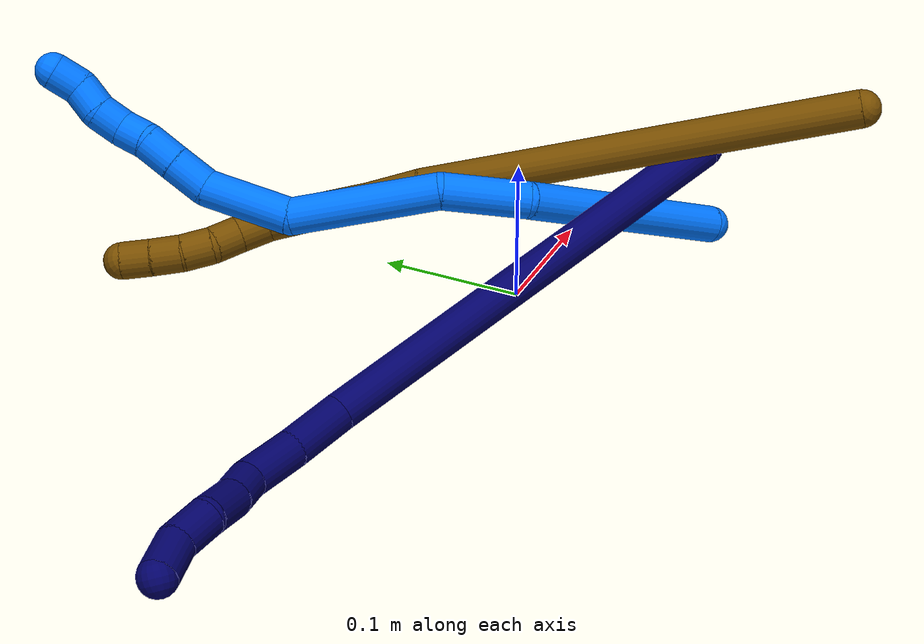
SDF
<sdf version="1.7">
 <world name="default">
  <model name="7">
   <static>0</static>
   <link name="7">
    <collision name="collision-cylinder-e_1_1_4">
     <pose>-0.134385 0.049802 -0.056192 -2.4164 -1.06127 1.99372</pose>
     <geometry><cylinder><radius>0.0125</radius><length>0.307877</length></cylinder></geometry>
     <surface>
      <friction><ode><mu>1.16</mu><mu2>1.16</mu2><slip1>0</slip1><slip2>0</slip2></ode></friction>
      <contact><ode><kp>1e+06</kp><kd>1</kd><max_vel>0</max_vel><min_depth>0.001</min_depth></ode></contact>
     </surface>
    </collision>
    <visual name="visual-cylinder-e_1_1_4">
     <pose>-0.134385 0.049802 -0.056192 -2.4164 -1.06127 1.99372</pose>
     <geometry><cylinder><radius>0.0125</radius><length>0.307877</length></cylinder></geometry>
     <material><ambient>0.003922 0 0.403922 1</ambient></material>
    </visual>
    <collision name="collision-cylinder-e_2_4_5">
     <pose>-0.2892 0.099336 -0.119894 3.10583 -1.21832 -3.09034</pose>
     <geometry><cylinder><radius>0.0125</radius><length>0.043538</length></cylinder></geometry>
     <surface>
      <friction><ode><mu>1.16</mu><mu2>1.16</mu2><slip1>0</slip1><slip2>0</slip2></ode></friction>
      <contact><ode><kp>1e+06</kp><kd>1</kd><max_vel>0</max_vel><min_depth>0.001</min_depth></ode></contact>
     </surface>
    </collision>
    <visual name="visual-cylinder-e_2_4_5">
     <pose>-0.2892 0.099336 -0.119894 3.10583 -1.21832 -3.09034</pose>
     <geometry><cylinder><radius>0.0125</radius><length>0.043538</length></cylinder></geometry>
     <material><ambient>0.003922 0 0.403922 1</ambient></material>
    </visual>
    <collision name="collision-cylinder-e_3_5_6">
     <pose>-0.328008 0.097606 -0.133037 2.88766 -1.26414 -2.79643</pose>
     <geometry><cylinder><radius>0.0125</radius><length>0.038551</length></cylinder></geometry>
     <surface>
      <friction><ode><mu>1.16</mu><mu2>1.16</mu2><slip1>0</slip1><slip2>0</slip2></ode></friction>
      <contact><ode><kp>1e+06</kp><kd>1</kd><max_vel>0</max_vel><min_depth>0.001</min_depth></ode></contact>
     </surface>
    </collision>
    <visual name="visual-cylinder-e_3_5_6">
     <pose>-0.328008 0.097606 -0.133037 2.88766 -1.26414 -2.79643</pose>
     <geometry><cylinder><radius>0.0125</radius><length>0.038551</length></cylinder></geometry>
     <material><ambient>0.003922 0 0.403922 1</ambient></material>
    </visual>
    <collision name="collision-cylinder-e_4_6_7">
     <pose>-0.356179 0.090968 -0.142704 2.23294 -0.980497 -1.65939</pose>
     <geometry><cylinder><radius>0.0125</radius><length>0.023581</length></cylinder></geometry>
     <surface>
      <friction><ode><mu>1.16</mu><mu2>1.16</mu2><slip1>0</slip1><slip2>0</slip2></ode></friction>
      <contact><ode><kp>1e+06</kp><kd>1</kd><max_vel>0</max_vel><min_depth>0.001</min_depth></ode></contact>
     </surface>
    </collision>
    <visual name="visual-cylinder-e_4_6_7">
     <pose>-0.356179 0.090968 -0.142704 2.23294 -0.980497 -1.65939</pose>
     <geometry><cylinder><radius>0.0125</radius><length>0.023581</length></cylinder></geometry>
     <material><ambient>0.003922 0 0.403922 1</ambient></material>
    </visual>
    <collision name="collision-cylinder-e_5_7_8">
     <pose>-0.379507 0.079087 -0.149905 2.01199 -1.06953 -1.5034</pose>
     <geometry><cylinder><radius>0.0125</radius><length>0.030863</length></cylinder></geometry>
     <surface>
      <friction><ode><mu>1.16</mu><mu2>1.16</mu2><slip1>0</slip1><slip2>0</slip2></ode></friction>
      <contact><ode><kp>1e+06</kp><kd>1</kd><max_vel>0</max_vel><min_depth>0.001</min_depth></ode></contact>
     </surface>
    </collision>
    <visual name="visual-cylinder-e_5_7_8">
     <pose>-0.379507 0.079087 -0.149905 2.01199 -1.06953 -1.5034</pose>
     <geometry><cylinder><radius>0.0125</radius><length>0.030863</length></cylinder></geometry>
     <material><ambient>0.003922 0 0.403922 1</ambient></material>
    </visual>
    <collision name="collision-cylinder-e_6_8_9">
     <pose>-0.405486 0.070823 -0.157883 2.8283 -1.18485 -2.68062</pose>
     <geometry><cylinder><radius>0.0125</radius><length>0.026868</length></cylinder></geometry>
     <surface>
      <friction><ode><mu>1.16</mu><mu2>1.16</mu2><slip1>0</slip1><slip2>0</slip2></ode></friction>
      <contact><ode><kp>1e+06</kp><kd>1</kd><max_vel>0</max_vel><min_depth>0.001</min_depth></ode></contact>
     </surface>
    </collision>
    <visual name="visual-cylinder-e_6_8_9">
     <pose>-0.405486 0.070823 -0.157883 2.8283 -1.18485 -2.68062</pose>
     <geometry><cylinder><radius>0.0125</radius><length>0.026868</length></cylinder></geometry>
     <material><ambient>0.003922 0 0.403922 1</ambient></material>
    </visual>
    <collision name="collision-cylinder-e_7_9_2">
     <pose>-0.428918 0.063949 -0.170261 2.52922 -0.871088 -1.94814</pose>
     <geometry><cylinder><radius>0.0125</radius><length>0.028722</length></cylinder></geometry>
     <surface>
      <friction><ode><mu>1.16</mu><mu2>1.16</mu2><slip1>0</slip1><slip2>0</slip2></ode></friction>
      <contact><ode><kp>1e+06</kp><kd>1</kd><max_vel>0</max_vel><min_depth>0.001</min_depth></ode></contact>
     </surface>
    </collision>
    <visual name="visual-cylinder-e_7_9_2">
     <pose>-0.428918 0.063949 -0.170261 2.52922 -0.871088 -1.94814</pose>
     <geometry><cylinder><radius>0.0125</radius><length>0.028722</length></cylinder></geometry>
     <material><ambient>0.003922 0 0.403922 1</ambient></material>
    </visual>
    <collision name="collision-sphere-2">
     <pose>-0.439905 0.058633 -0.177829 0 -0 0</pose>
     <geometry><sphere><radius>0.0125</radius></sphere></geometry>
     <surface>
      <friction><ode><mu>1.16</mu><mu2>1.16</mu2><slip1>0</slip1><slip2>0</slip2></ode></friction>
      <contact><ode><kp>1e+06</kp><kd>1</kd><max_vel>0</max_vel><min_depth>0.001</min_depth></ode></contact>
     </surface>
    </collision>
    <visual name="visual-sphere-2">
     <pose>-0.439905 0.058633 -0.177829 0 -0 0</pose>
     <geometry><sphere><radius>0.0125</radius></sphere></geometry>
     <material><ambient>0.003922 0 0.403922 1</ambient></material>
    </visual>
    <collision name="collision-sphere-9">
     <pose>-0.417932 0.069265 -0.162694 0 -0 0</pose>
     <geometry><sphere><radius>0.0125</radius></sphere></geometry>
     <surface>
      <friction><ode><mu>1.16</mu><mu2>1.16</mu2><slip1>0</slip1><slip2>0</slip2></ode></friction>
      <contact><ode><kp>1e+06</kp><kd>1</kd><max_vel>0</max_vel><min_depth>0.001</min_depth></ode></contact>
     </surface>
    </collision>
    <visual name="visual-sphere-9">
     <pose>-0.417932 0.069265 -0.162694 0 -0 0</pose>
     <geometry><sphere><radius>0.0125</radius></sphere></geometry>
     <material><ambient>0.003922 0 0.403922 1</ambient></material>
    </visual>
    <collision name="collision-sphere-4">
     <pose>-0.268769 0.099605 -0.112384 0 -0 0</pose>
     <geometry><sphere><radius>0.0125</radius></sphere></geometry>
     <surface>
      <friction><ode><mu>1.16</mu><mu2>1.16</mu2><slip1>0</slip1><slip2>0</slip2></ode></friction>
      <contact><ode><kp>1e+06</kp><kd>1</kd><max_vel>0</max_vel><min_depth>0.001</min_depth></ode></contact>
     </surface>
    </collision>
    <visual name="visual-sphere-4">
     <pose>-0.268769 0.099605 -0.112384 0 -0 0</pose>
     <geometry><sphere><radius>0.0125</radius></sphere></geometry>
     <material><ambient>0.003922 0 0.403922 1</ambient></material>
    </visual>
    <collision name="collision-sphere-1">
     <geometry><sphere><radius>0.0125</radius></sphere></geometry>
     <surface>
      <friction><ode><mu>1.16</mu><mu2>1.16</mu2><slip1>0</slip1><slip2>0</slip2></ode></friction>
      <contact><ode><kp>1e+06</kp><kd>1</kd><max_vel>0</max_vel><min_depth>0.001</min_depth></ode></contact>
     </surface>
    </collision>
    <visual name="visual-sphere-1">
     <geometry><sphere><radius>0.0125</radius></sphere></geometry>
     <material><ambient>0.003922 0 0.403922 1</ambient></material>
    </visual>
    <collision name="collision-sphere-8">
     <pose>-0.39304 0.072382 -0.153072 0 -0 0</pose>
     <geometry><sphere><radius>0.0125</radius></sphere></geometry>
     <surface>
      <friction><ode><mu>1.16</mu><mu2>1.16</mu2><slip1>0</slip1><slip2>0</slip2></ode></friction>
      <contact><ode><kp>1e+06</kp><kd>1</kd><max_vel>0</max_vel><min_depth>0.001</min_depth></ode></contact>
     </surface>
    </collision>
    <visual name="visual-sphere-8">
     <pose>-0.39304 0.072382 -0.153072 0 -0 0</pose>
     <geometry><sphere><radius>0.0125</radius></sphere></geometry>
     <material><ambient>0.003922 0 0.403922 1</ambient></material>
    </visual>
    <collision name="collision-sphere-5">
     <pose>-0.309631 0.099068 -0.127405 0 -0 0</pose>
     <geometry><sphere><radius>0.0125</radius></sphere></geometry>
     <surface>
      <friction><ode><mu>1.16</mu><mu2>1.16</mu2><slip1>0</slip1><slip2>0</slip2></ode></friction>
      <contact><ode><kp>1e+06</kp><kd>1</kd><max_vel>0</max_vel><min_depth>0.001</min_depth></ode></contact>
     </surface>
    </collision>
    <visual name="visual-sphere-5">
     <pose>-0.309631 0.099068 -0.127405 0 -0 0</pose>
     <geometry><sphere><radius>0.0125</radius></sphere></geometry>
     <material><ambient>0.003922 0 0.403922 1</ambient></material>
    </visual>
    <collision name="collision-sphere-6">
     <pose>-0.346384 0.096144 -0.138669 0 -0 0</pose>
     <geometry><sphere><radius>0.0125</radius></sphere></geometry>
     <surface>
      <friction><ode><mu>1.16</mu><mu2>1.16</mu2><slip1>0</slip1><slip2>0</slip2></ode></friction>
      <contact><ode><kp>1e+06</kp><kd>1</kd><max_vel>0</max_vel><min_depth>0.001</min_depth></ode></contact>
     </surface>
    </collision>
    <visual name="visual-sphere-6">
     <pose>-0.346384 0.096144 -0.138669 0 -0 0</pose>
     <geometry><sphere><radius>0.0125</radius></sphere></geometry>
     <material><ambient>0.003922 0 0.403922 1</ambient></material>
    </visual>
    <collision name="collision-sphere-7">
     <pose>-0.365974 0.085792 -0.146739 0 -0 0</pose>
     <geometry><sphere><radius>0.0125</radius></sphere></geometry>
     <surface>
      <friction><ode><mu>1.16</mu><mu2>1.16</mu2><slip1>0</slip1><slip2>0</slip2></ode></friction>
      <contact><ode><kp>1e+06</kp><kd>1</kd><max_vel>0</max_vel><min_depth>0.001</min_depth></ode></contact>
     </surface>
    </collision>
    <visual name="visual-sphere-7">
     <pose>-0.365974 0.085792 -0.146739 0 -0 0</pose>
     <geometry><sphere><radius>0.0125</radius></sphere></geometry>
     <material><ambient>0.003922 0 0.403922 1</ambient></material>
    </visual>
    <inertial>
     <pose>-0.219872 0.063493 -0.089545 0 -0 0</pose>
     <mass>0.5</mass>
     <inertia>
      <ixx>0.000551</ixx>
      <ixy>0</ixy>
      <ixz>0</ixz>
      <iyy>0.003151</iyy>
      <iyz>0</iyz>
      <izz>0.001357</izz>
     </inertia>
    </inertial>
   </link>
   <pose>0.053514 -0.111439 0.113519 -0.625214 0.186166 -0.461369</pose>
  </model>
  <model name="12">
   <static>0</static>
   <link name="12">
    <collision name="collision-cylinder-e_1_1_4">
     <pose>-0.069484 0.073327 -0.104847 -2.53129 -0.497515 1.3573</pose>
     <geometry><cylinder><radius>0.0125</radius><length>0.29119</length></cylinder></geometry>
     <surface>
      <friction><ode><mu>1.16</mu><mu2>1.16</mu2><slip1>0</slip1><slip2>0</slip2></ode></friction>
      <contact><ode><kp>1e+06</kp><kd>1</kd><max_vel>0</max_vel><min_depth>0.001</min_depth></ode></contact>
     </surface>
    </collision>
    <visual name="visual-cylinder-e_1_1_4">
     <pose>-0.069484 0.073327 -0.104847 -2.53129 -0.497515 1.3573</pose>
     <geometry><cylinder><radius>0.0125</radius><length>0.29119</length></cylinder></geometry>
     <material><ambient>0.466667 0.301961 0 1</ambient></material>
    </visual>
    <collision name="collision-cylinder-e_2_4_5">
     <pose>-0.14823 0.154593 -0.224199 -2.64082 -0.510586 1.59106</pose>
     <geometry><cylinder><radius>0.0125</radius><length>0.037904</length></cylinder></geometry>
     <surface>
      <friction><ode><mu>1.16</mu><mu2>1.16</mu2><slip1>0</slip1><slip2>0</slip2></ode></friction>
      <contact><ode><kp>1e+06</kp><kd>1</kd><max_vel>0</max_vel><min_depth>0.001</min_depth></ode></contact>
     </surface>
    </collision>
    <visual name="visual-cylinder-e_2_4_5">
     <pose>-0.14823 0.154593 -0.224199 -2.64082 -0.510586 1.59106</pose>
     <geometry><cylinder><radius>0.0125</radius><length>0.037904</length></cylinder></geometry>
     <material><ambient>0.466667 0.301961 0 1</ambient></material>
    </visual>
    <collision name="collision-cylinder-e_3_5_6">
     <pose>-0.164648 0.168549 -0.24422 -2.31275 -0.719729 1.41513</pose>
     <geometry><cylinder><radius>0.0125</radius><length>0.021713</length></cylinder></geometry>
     <surface>
      <friction><ode><mu>1.16</mu><mu2>1.16</mu2><slip1>0</slip1><slip2>0</slip2></ode></friction>
      <contact><ode><kp>1e+06</kp><kd>1</kd><max_vel>0</max_vel><min_depth>0.001</min_depth></ode></contact>
     </surface>
    </collision>
    <visual name="visual-cylinder-e_3_5_6">
     <pose>-0.164648 0.168549 -0.24422 -2.31275 -0.719729 1.41513</pose>
     <geometry><cylinder><radius>0.0125</radius><length>0.021713</length></cylinder></geometry>
     <material><ambient>0.466667 0.301961 0 1</ambient></material>
    </visual>
    <collision name="collision-cylinder-e_4_6_7">
     <pose>-0.179869 0.181377 -0.256354 -2.3419 -0.704052 1.43105</pose>
     <geometry><cylinder><radius>0.0125</radius><length>0.024916</length></cylinder></geometry>
     <surface>
      <friction><ode><mu>1.16</mu><mu2>1.16</mu2><slip1>0</slip1><slip2>0</slip2></ode></friction>
      <contact><ode><kp>1e+06</kp><kd>1</kd><max_vel>0</max_vel><min_depth>0.001</min_depth></ode></contact>
     </surface>
    </collision>
    <visual name="visual-cylinder-e_4_6_7">
     <pose>-0.179869 0.181377 -0.256354 -2.3419 -0.704052 1.43105</pose>
     <geometry><cylinder><radius>0.0125</radius><length>0.024916</length></cylinder></geometry>
     <material><ambient>0.466667 0.301961 0 1</ambient></material>
    </visual>
    <collision name="collision-cylinder-e_5_7_8">
     <pose>-0.194732 0.193827 -0.269498 -2.42888 -0.667582 1.49994</pose>
     <geometry><cylinder><radius>0.0125</radius><length>0.021966</length></cylinder></geometry>
     <surface>
      <friction><ode><mu>1.16</mu><mu2>1.16</mu2><slip1>0</slip1><slip2>0</slip2></ode></friction>
      <contact><ode><kp>1e+06</kp><kd>1</kd><max_vel>0</max_vel><min_depth>0.001</min_depth></ode></contact>
     </surface>
    </collision>
    <visual name="visual-cylinder-e_5_7_8">
     <pose>-0.194732 0.193827 -0.269498 -2.42888 -0.667582 1.49994</pose>
     <geometry><cylinder><radius>0.0125</radius><length>0.021966</length></cylinder></geometry>
     <material><ambient>0.466667 0.301961 0 1</ambient></material>
    </visual>
    <collision name="collision-cylinder-e_6_8_9">
     <pose>-0.2094 0.203871 -0.281767 -2.48744 -0.827141 1.82546</pose>
     <geometry><cylinder><radius>0.0125</radius><length>0.02138</length></cylinder></geometry>
     <surface>
      <friction><ode><mu>1.16</mu><mu2>1.16</mu2><slip1>0</slip1><slip2>0</slip2></ode></friction>
      <contact><ode><kp>1e+06</kp><kd>1</kd><max_vel>0</max_vel><min_depth>0.001</min_depth></ode></contact>
     </surface>
    </collision>
    <visual name="visual-cylinder-e_6_8_9">
     <pose>-0.2094 0.203871 -0.281767 -2.48744 -0.827141 1.82546</pose>
     <geometry><cylinder><radius>0.0125</radius><length>0.02138</length></cylinder></geometry>
     <material><ambient>0.466667 0.301961 0 1</ambient></material>
    </visual>
    <collision name="collision-cylinder-e_7_9_10">
     <pose>-0.226138 0.2127 -0.289599 -2.01182 -1.06663 1.49992</pose>
     <geometry><cylinder><radius>0.0125</radius><length>0.020264</length></cylinder></geometry>
     <surface>
      <friction><ode><mu>1.16</mu><mu2>1.16</mu2><slip1>0</slip1><slip2>0</slip2></ode></friction>
      <contact><ode><kp>1e+06</kp><kd>1</kd><max_vel>0</max_vel><min_depth>0.001</min_depth></ode></contact>
     </surface>
    </collision>
    <visual name="visual-cylinder-e_7_9_10">
     <pose>-0.226138 0.2127 -0.289599 -2.01182 -1.06663 1.49992</pose>
     <geometry><cylinder><radius>0.0125</radius><length>0.020264</length></cylinder></geometry>
     <material><ambient>0.466667 0.301961 0 1</ambient></material>
    </visual>
    <collision name="collision-cylinder-e_8_10_11">
     <pose>-0.242159 0.222443 -0.296452 -2.30144 -0.786095 1.49643</pose>
     <geometry><cylinder><radius>0.0125</radius><length>0.020206</length></cylinder></geometry>
     <surface>
      <friction><ode><mu>1.16</mu><mu2>1.16</mu2><slip1>0</slip1><slip2>0</slip2></ode></friction>
      <contact><ode><kp>1e+06</kp><kd>1</kd><max_vel>0</max_vel><min_depth>0.001</min_depth></ode></contact>
     </surface>
    </collision>
    <visual name="visual-cylinder-e_8_10_11">
     <pose>-0.242159 0.222443 -0.296452 -2.30144 -0.786095 1.49643</pose>
     <geometry><cylinder><radius>0.0125</radius><length>0.020206</length></cylinder></geometry>
     <material><ambient>0.466667 0.301961 0 1</ambient></material>
    </visual>
    <collision name="collision-cylinder-e_9_11_12">
     <pose>-0.255195 0.233769 -0.306936 -2.33156 -0.617177 1.27872</pose>
     <geometry><cylinder><radius>0.0125</radius><length>0.020345</length></cylinder></geometry>
     <surface>
      <friction><ode><mu>1.16</mu><mu2>1.16</mu2><slip1>0</slip1><slip2>0</slip2></ode></friction>
      <contact><ode><kp>1e+06</kp><kd>1</kd><max_vel>0</max_vel><min_depth>0.001</min_depth></ode></contact>
     </surface>
    </collision>
    <visual name="visual-cylinder-e_9_11_12">
     <pose>-0.255195 0.233769 -0.306936 -2.33156 -0.617177 1.27872</pose>
     <geometry><cylinder><radius>0.0125</radius><length>0.020345</length></cylinder></geometry>
     <material><ambient>0.466667 0.301961 0 1</ambient></material>
    </visual>
    <collision name="collision-cylinder-e_10_12_2">
     <pose>-0.266396 0.245766 -0.318745 -2.36453 -0.556558 1.21868</pose>
     <geometry><cylinder><radius>0.0125</radius><length>0.020116</length></cylinder></geometry>
     <surface>
      <friction><ode><mu>1.16</mu><mu2>1.16</mu2><slip1>0</slip1><slip2>0</slip2></ode></friction>
      <contact><ode><kp>1e+06</kp><kd>1</kd><max_vel>0</max_vel><min_depth>0.001</min_depth></ode></contact>
     </surface>
    </collision>
    <visual name="visual-cylinder-e_10_12_2">
     <pose>-0.266396 0.245766 -0.318745 -2.36453 -0.556558 1.21868</pose>
     <geometry><cylinder><radius>0.0125</radius><length>0.020116</length></cylinder></geometry>
     <material><ambient>0.466667 0.301961 0 1</ambient></material>
    </visual>
    <collision name="collision-sphere-2">
     <pose>-0.271709 0.251754 -0.324834 0 -0 0</pose>
     <geometry><sphere><radius>0.0125</radius></sphere></geometry>
     <surface>
      <friction><ode><mu>1.16</mu><mu2>1.16</mu2><slip1>0</slip1><slip2>0</slip2></ode></friction>
      <contact><ode><kp>1e+06</kp><kd>1</kd><max_vel>0</max_vel><min_depth>0.001</min_depth></ode></contact>
     </surface>
    </collision>
    <visual name="visual-sphere-2">
     <pose>-0.271709 0.251754 -0.324834 0 -0 0</pose>
     <geometry><sphere><radius>0.0125</radius></sphere></geometry>
     <material><ambient>0.466667 0.301961 0 1</ambient></material>
    </visual>
    <collision name="collision-sphere-12">
     <pose>-0.261082 0.239778 -0.312656 0 -0 0</pose>
     <geometry><sphere><radius>0.0125</radius></sphere></geometry>
     <surface>
      <friction><ode><mu>1.16</mu><mu2>1.16</mu2><slip1>0</slip1><slip2>0</slip2></ode></friction>
      <contact><ode><kp>1e+06</kp><kd>1</kd><max_vel>0</max_vel><min_depth>0.001</min_depth></ode></contact>
     </surface>
    </collision>
    <visual name="visual-sphere-12">
     <pose>-0.261082 0.239778 -0.312656 0 -0 0</pose>
     <geometry><sphere><radius>0.0125</radius></sphere></geometry>
     <material><ambient>0.466667 0.301961 0 1</ambient></material>
    </visual>
    <collision name="collision-sphere-11">
     <pose>-0.249308 0.22776 -0.301217 0 -0 0</pose>
     <geometry><sphere><radius>0.0125</radius></sphere></geometry>
     <surface>
      <friction><ode><mu>1.16</mu><mu2>1.16</mu2><slip1>0</slip1><slip2>0</slip2></ode></friction>
      <contact><ode><kp>1e+06</kp><kd>1</kd><max_vel>0</max_vel><min_depth>0.001</min_depth></ode></contact>
     </surface>
    </collision>
    <visual name="visual-sphere-11">
     <pose>-0.249308 0.22776 -0.301217 0 -0 0</pose>
     <geometry><sphere><radius>0.0125</radius></sphere></geometry>
     <material><ambient>0.466667 0.301961 0 1</ambient></material>
    </visual>
    <collision name="collision-sphere-10">
     <pose>-0.23501 0.217126 -0.291688 0 -0 0</pose>
     <geometry><sphere><radius>0.0125</radius></sphere></geometry>
     <surface>
      <friction><ode><mu>1.16</mu><mu2>1.16</mu2><slip1>0</slip1><slip2>0</slip2></ode></friction>
      <contact><ode><kp>1e+06</kp><kd>1</kd><max_vel>0</max_vel><min_depth>0.001</min_depth></ode></contact>
     </surface>
    </collision>
    <visual name="visual-sphere-10">
     <pose>-0.23501 0.217126 -0.291688 0 -0 0</pose>
     <geometry><sphere><radius>0.0125</radius></sphere></geometry>
     <material><ambient>0.466667 0.301961 0 1</ambient></material>
    </visual>
    <collision name="collision-sphere-9">
     <pose>-0.217267 0.208274 -0.28751 0 -0 0</pose>
     <geometry><sphere><radius>0.0125</radius></sphere></geometry>
     <surface>
      <friction><ode><mu>1.16</mu><mu2>1.16</mu2><slip1>0</slip1><slip2>0</slip2></ode></friction>
      <contact><ode><kp>1e+06</kp><kd>1</kd><max_vel>0</max_vel><min_depth>0.001</min_depth></ode></contact>
     </surface>
    </collision>
    <visual name="visual-sphere-9">
     <pose>-0.217267 0.208274 -0.28751 0 -0 0</pose>
     <geometry><sphere><radius>0.0125</radius></sphere></geometry>
     <material><ambient>0.466667 0.301961 0 1</ambient></material>
    </visual>
    <collision name="collision-sphere-4">
     <pose>-0.138969 0.146655 -0.209694 0 -0 0</pose>
     <geometry><sphere><radius>0.0125</radius></sphere></geometry>
     <surface>
      <friction><ode><mu>1.16</mu><mu2>1.16</mu2><slip1>0</slip1><slip2>0</slip2></ode></friction>
      <contact><ode><kp>1e+06</kp><kd>1</kd><max_vel>0</max_vel><min_depth>0.001</min_depth></ode></contact>
     </surface>
    </collision>
    <visual name="visual-sphere-4">
     <pose>-0.138969 0.146655 -0.209694 0 -0 0</pose>
     <geometry><sphere><radius>0.0125</radius></sphere></geometry>
     <material><ambient>0.466667 0.301961 0 1</ambient></material>
    </visual>
    <collision name="collision-sphere-1">
     <geometry><sphere><radius>0.0125</radius></sphere></geometry>
     <surface>
      <friction><ode><mu>1.16</mu><mu2>1.16</mu2><slip1>0</slip1><slip2>0</slip2></ode></friction>
      <contact><ode><kp>1e+06</kp><kd>1</kd><max_vel>0</max_vel><min_depth>0.001</min_depth></ode></contact>
     </surface>
    </collision>
    <visual name="visual-sphere-1">
     <geometry><sphere><radius>0.0125</radius></sphere></geometry>
     <material><ambient>0.466667 0.301961 0 1</ambient></material>
    </visual>
    <collision name="collision-sphere-8">
     <pose>-0.201532 0.199467 -0.276024 0 -0 0</pose>
     <geometry><sphere><radius>0.0125</radius></sphere></geometry>
     <surface>
      <friction><ode><mu>1.16</mu><mu2>1.16</mu2><slip1>0</slip1><slip2>0</slip2></ode></friction>
      <contact><ode><kp>1e+06</kp><kd>1</kd><max_vel>0</max_vel><min_depth>0.001</min_depth></ode></contact>
     </surface>
    </collision>
    <visual name="visual-sphere-8">
     <pose>-0.201532 0.199467 -0.276024 0 -0 0</pose>
     <geometry><sphere><radius>0.0125</radius></sphere></geometry>
     <material><ambient>0.466667 0.301961 0 1</ambient></material>
    </visual>
    <collision name="collision-sphere-5">
     <pose>-0.157492 0.162531 -0.238703 0 -0 0</pose>
     <geometry><sphere><radius>0.0125</radius></sphere></geometry>
     <surface>
      <friction><ode><mu>1.16</mu><mu2>1.16</mu2><slip1>0</slip1><slip2>0</slip2></ode></friction>
      <contact><ode><kp>1e+06</kp><kd>1</kd><max_vel>0</max_vel><min_depth>0.001</min_depth></ode></contact>
     </surface>
    </collision>
    <visual name="visual-sphere-5">
     <pose>-0.157492 0.162531 -0.238703 0 -0 0</pose>
     <geometry><sphere><radius>0.0125</radius></sphere></geometry>
     <material><ambient>0.466667 0.301961 0 1</ambient></material>
    </visual>
    <collision name="collision-sphere-6">
     <pose>-0.171804 0.174567 -0.249736 0 -0 0</pose>
     <geometry><sphere><radius>0.0125</radius></sphere></geometry>
     <surface>
      <friction><ode><mu>1.16</mu><mu2>1.16</mu2><slip1>0</slip1><slip2>0</slip2></ode></friction>
      <contact><ode><kp>1e+06</kp><kd>1</kd><max_vel>0</max_vel><min_depth>0.001</min_depth></ode></contact>
     </surface>
    </collision>
    <visual name="visual-sphere-6">
     <pose>-0.171804 0.174567 -0.249736 0 -0 0</pose>
     <geometry><sphere><radius>0.0125</radius></sphere></geometry>
     <material><ambient>0.466667 0.301961 0 1</ambient></material>
    </visual>
    <collision name="collision-sphere-7">
     <pose>-0.187933 0.188187 -0.262972 0 -0 0</pose>
     <geometry><sphere><radius>0.0125</radius></sphere></geometry>
     <surface>
      <friction><ode><mu>1.16</mu><mu2>1.16</mu2><slip1>0</slip1><slip2>0</slip2></ode></friction>
      <contact><ode><kp>1e+06</kp><kd>1</kd><max_vel>0</max_vel><min_depth>0.001</min_depth></ode></contact>
     </surface>
    </collision>
    <visual name="visual-sphere-7">
     <pose>-0.187933 0.188187 -0.262972 0 -0 0</pose>
     <geometry><sphere><radius>0.0125</radius></sphere></geometry>
     <material><ambient>0.466667 0.301961 0 1</ambient></material>
    </visual>
    <inertial>
     <pose>-0.125378 0.125024 -0.174355 0 -0 0</pose>
     <mass>0.5</mass>
     <inertia>
      <ixx>0.002157</ixx>
      <ixy>0</ixy>
      <ixz>0</ixz>
      <iyy>0.002012</iyy>
      <iyz>0</iyz>
      <izz>-7.8e-05</izz>
     </inertia>
    </inertial>
   </link>
   <pose>0.055857 -0.213521 0.163517 0.864191 -0.343785 -0.093496</pose>
  </model>
  <model name="14">
   <static>0</static>
   <link name="14">
    <collision name="collision-cylinder-e_1_1_4">
     <pose>-0.035357 0.017579 0.06399 -0.268099 -0.489548 0.067345</pose>
     <geometry><cylinder><radius>0.0125</radius><length>0.150384</length></cylinder></geometry>
     <surface>
      <friction><ode><mu>1.16</mu><mu2>1.16</mu2><slip1>0</slip1><slip2>0</slip2></ode></friction>
      <contact><ode><kp>1e+06</kp><kd>1</kd><max_vel>0</max_vel><min_depth>0.001</min_depth></ode></contact>
     </surface>
    </collision>
    <visual name="visual-cylinder-e_1_1_4">
     <pose>-0.035357 0.017579 0.06399 -0.268099 -0.489548 0.067345</pose>
     <geometry><cylinder><radius>0.0125</radius><length>0.150384</length></cylinder></geometry>
     <material><ambient>0 0.462745 1 1</ambient></material>
    </visual>
    <collision name="collision-cylinder-e_2_4_5">
     <pose>-0.073775 0.045371 0.155248 -0.358372 -0.104703 0.018982</pose>
     <geometry><cylinder><radius>0.0125</radius><length>0.058559</length></cylinder></geometry>
     <surface>
      <friction><ode><mu>1.16</mu><mu2>1.16</mu2><slip1>0</slip1><slip2>0</slip2></ode></friction>
      <contact><ode><kp>1e+06</kp><kd>1</kd><max_vel>0</max_vel><min_depth>0.001</min_depth></ode></contact>
     </surface>
    </collision>
    <visual name="visual-cylinder-e_2_4_5">
     <pose>-0.073775 0.045371 0.155248 -0.358372 -0.104703 0.018982</pose>
     <geometry><cylinder><radius>0.0125</radius><length>0.058559</length></cylinder></geometry>
     <material><ambient>0 0.462745 1 1</ambient></material>
    </visual>
    <collision name="collision-cylinder-e_3_5_6">
     <pose>-0.071399 0.086498 0.221678 -0.668253 0.108523 -0.037706</pose>
     <geometry><cylinder><radius>0.0125</radius><length>0.100374</length></cylinder></geometry>
     <surface>
      <friction><ode><mu>1.16</mu><mu2>1.16</mu2><slip1>0</slip1><slip2>0</slip2></ode></friction>
      <contact><ode><kp>1e+06</kp><kd>1</kd><max_vel>0</max_vel><min_depth>0.001</min_depth></ode></contact>
     </surface>
    </collision>
    <visual name="visual-cylinder-e_3_5_6">
     <pose>-0.071399 0.086498 0.221678 -0.668253 0.108523 -0.037706</pose>
     <geometry><cylinder><radius>0.0125</radius><length>0.100374</length></cylinder></geometry>
     <material><ambient>0 0.462745 1 1</ambient></material>
    </visual>
    <collision name="collision-cylinder-e_4_6_7">
     <pose>-0.058191 0.122942 0.289441 -0.190978 0.260702 -0.025111</pose>
     <geometry><cylinder><radius>0.0125</radius><length>0.060302</length></cylinder></geometry>
     <surface>
      <friction><ode><mu>1.16</mu><mu2>1.16</mu2><slip1>0</slip1><slip2>0</slip2></ode></friction>
      <contact><ode><kp>1e+06</kp><kd>1</kd><max_vel>0</max_vel><min_depth>0.001</min_depth></ode></contact>
     </surface>
    </collision>
    <visual name="visual-cylinder-e_4_6_7">
     <pose>-0.058191 0.122942 0.289441 -0.190978 0.260702 -0.025111</pose>
     <geometry><cylinder><radius>0.0125</radius><length>0.060302</length></cylinder></geometry>
     <material><ambient>0 0.462745 1 1</ambient></material>
    </visual>
    <collision name="collision-cylinder-e_5_7_8">
     <pose>-0.048439 0.126278 0.330901 0.168971 0.150728 0.012789</pose>
     <geometry><cylinder><radius>0.0125</radius><length>0.026386</length></cylinder></geometry>
     <surface>
      <friction><ode><mu>1.16</mu><mu2>1.16</mu2><slip1>0</slip1><slip2>0</slip2></ode></friction>
      <contact><ode><kp>1e+06</kp><kd>1</kd><max_vel>0</max_vel><min_depth>0.001</min_depth></ode></contact>
     </surface>
    </collision>
    <visual name="visual-cylinder-e_5_7_8">
     <pose>-0.048439 0.126278 0.330901 0.168971 0.150728 0.012789</pose>
     <geometry><cylinder><radius>0.0125</radius><length>0.026386</length></cylinder></geometry>
     <material><ambient>0 0.462745 1 1</ambient></material>
    </visual>
    <collision name="collision-cylinder-e_6_8_9">
     <pose>-0.044177 0.122107 0.355208 0.171077 0.193796 0.016669</pose>
     <geometry><cylinder><radius>0.0125</radius><length>0.023683</length></cylinder></geometry>
     <surface>
      <friction><ode><mu>1.16</mu><mu2>1.16</mu2><slip1>0</slip1><slip2>0</slip2></ode></friction>
      <contact><ode><kp>1e+06</kp><kd>1</kd><max_vel>0</max_vel><min_depth>0.001</min_depth></ode></contact>
     </surface>
    </collision>
    <visual name="visual-cylinder-e_6_8_9">
     <pose>-0.044177 0.122107 0.355208 0.171077 0.193796 0.016669</pose>
     <geometry><cylinder><radius>0.0125</radius><length>0.023683</length></cylinder></geometry>
     <material><ambient>0 0.462745 1 1</ambient></material>
    </visual>
    <collision name="collision-cylinder-e_7_9_10">
     <pose>-0.037808 0.120742 0.375773 -0.067209 0.420837 -0.01436</pose>
     <geometry><cylinder><radius>0.0125</radius><length>0.020017</length></cylinder></geometry>
     <surface>
      <friction><ode><mu>1.16</mu><mu2>1.16</mu2><slip1>0</slip1><slip2>0</slip2></ode></friction>
      <contact><ode><kp>1e+06</kp><kd>1</kd><max_vel>0</max_vel><min_depth>0.001</min_depth></ode></contact>
     </surface>
    </collision>
    <visual name="visual-cylinder-e_7_9_10">
     <pose>-0.037808 0.120742 0.375773 -0.067209 0.420837 -0.01436</pose>
     <geometry><cylinder><radius>0.0125</radius><length>0.020017</length></cylinder></geometry>
     <material><ambient>0 0.462745 1 1</ambient></material>
    </visual>
    <collision name="collision-cylinder-e_8_10_11">
     <pose>-0.033497 0.119984 0.394796 0.137509 0.022178 0.001527</pose>
     <geometry><cylinder><radius>0.0125</radius><length>0.020012</length></cylinder></geometry>
     <surface>
      <friction><ode><mu>1.16</mu><mu2>1.16</mu2><slip1>0</slip1><slip2>0</slip2></ode></friction>
      <contact><ode><kp>1e+06</kp><kd>1</kd><max_vel>0</max_vel><min_depth>0.001</min_depth></ode></contact>
     </surface>
    </collision>
    <visual name="visual-cylinder-e_8_10_11">
     <pose>-0.033497 0.119984 0.394796 0.137509 0.022178 0.001527</pose>
     <geometry><cylinder><radius>0.0125</radius><length>0.020012</length></cylinder></geometry>
     <material><ambient>0 0.462745 1 1</ambient></material>
    </visual>
    <collision name="collision-cylinder-e_9_11_12">
     <pose>-0.030931 0.114682 0.413685 0.412634 0.234779 0.049355</pose>
     <geometry><cylinder><radius>0.0125</radius><length>0.020157</length></cylinder></geometry>
     <surface>
      <friction><ode><mu>1.16</mu><mu2>1.16</mu2><slip1>0</slip1><slip2>0</slip2></ode></friction>
      <contact><ode><kp>1e+06</kp><kd>1</kd><max_vel>0</max_vel><min_depth>0.001</min_depth></ode></contact>
     </surface>
    </collision>
    <visual name="visual-cylinder-e_9_11_12">
     <pose>-0.030931 0.114682 0.413685 0.412634 0.234779 0.049355</pose>
     <geometry><cylinder><radius>0.0125</radius><length>0.020157</length></cylinder></geometry>
     <material><ambient>0 0.462745 1 1</ambient></material>
    </visual>
    <collision name="collision-cylinder-e_10_12_2">
     <pose>-0.029371 0.109833 0.432655 0.091616 -0.078041 -0.003579</pose>
     <geometry><cylinder><radius>0.0125</radius><length>0.020127</length></cylinder></geometry>
     <surface>
      <friction><ode><mu>1.16</mu><mu2>1.16</mu2><slip1>0</slip1><slip2>0</slip2></ode></friction>
      <contact><ode><kp>1e+06</kp><kd>1</kd><max_vel>0</max_vel><min_depth>0.001</min_depth></ode></contact>
     </surface>
    </collision>
    <visual name="visual-cylinder-e_10_12_2">
     <pose>-0.029371 0.109833 0.432655 0.091616 -0.078041 -0.003579</pose>
     <geometry><cylinder><radius>0.0125</radius><length>0.020127</length></cylinder></geometry>
     <material><ambient>0 0.462745 1 1</ambient></material>
    </visual>
    <collision name="collision-sphere-2">
     <pose>-0.030156 0.108916 0.442646 0 -0 0</pose>
     <geometry><sphere><radius>0.0125</radius></sphere></geometry>
     <surface>
      <friction><ode><mu>1.16</mu><mu2>1.16</mu2><slip1>0</slip1><slip2>0</slip2></ode></friction>
      <contact><ode><kp>1e+06</kp><kd>1</kd><max_vel>0</max_vel><min_depth>0.001</min_depth></ode></contact>
     </surface>
    </collision>
    <visual name="visual-sphere-2">
     <pose>-0.030156 0.108916 0.442646 0 -0 0</pose>
     <geometry><sphere><radius>0.0125</radius></sphere></geometry>
     <material><ambient>0 0.462745 1 1</ambient></material>
    </visual>
    <collision name="collision-sphere-12">
     <pose>-0.028586 0.110751 0.422664 0 -0 0</pose>
     <geometry><sphere><radius>0.0125</radius></sphere></geometry>
     <surface>
      <friction><ode><mu>1.16</mu><mu2>1.16</mu2><slip1>0</slip1><slip2>0</slip2></ode></friction>
      <contact><ode><kp>1e+06</kp><kd>1</kd><max_vel>0</max_vel><min_depth>0.001</min_depth></ode></contact>
     </surface>
    </collision>
    <visual name="visual-sphere-12">
     <pose>-0.028586 0.110751 0.422664 0 -0 0</pose>
     <geometry><sphere><radius>0.0125</radius></sphere></geometry>
     <material><ambient>0 0.462745 1 1</ambient></material>
    </visual>
    <collision name="collision-sphere-11">
     <pose>-0.033276 0.118613 0.404705 0 -0 0</pose>
     <geometry><sphere><radius>0.0125</radius></sphere></geometry>
     <surface>
      <friction><ode><mu>1.16</mu><mu2>1.16</mu2><slip1>0</slip1><slip2>0</slip2></ode></friction>
      <contact><ode><kp>1e+06</kp><kd>1</kd><max_vel>0</max_vel><min_depth>0.001</min_depth></ode></contact>
     </surface>
    </collision>
    <visual name="visual-sphere-11">
     <pose>-0.033276 0.118613 0.404705 0 -0 0</pose>
     <geometry><sphere><radius>0.0125</radius></sphere></geometry>
     <material><ambient>0 0.462745 1 1</ambient></material>
    </visual>
    <collision name="collision-sphere-10">
     <pose>-0.033719 0.121356 0.384887 0 -0 0</pose>
     <geometry><sphere><radius>0.0125</radius></sphere></geometry>
     <surface>
      <friction><ode><mu>1.16</mu><mu2>1.16</mu2><slip1>0</slip1><slip2>0</slip2></ode></friction>
      <contact><ode><kp>1e+06</kp><kd>1</kd><max_vel>0</max_vel><min_depth>0.001</min_depth></ode></contact>
     </surface>
    </collision>
    <visual name="visual-sphere-10">
     <pose>-0.033719 0.121356 0.384887 0 -0 0</pose>
     <geometry><sphere><radius>0.0125</radius></sphere></geometry>
     <material><ambient>0 0.462745 1 1</ambient></material>
    </visual>
    <collision name="collision-sphere-9">
     <pose>-0.041897 0.120129 0.366658 0 -0 0</pose>
     <geometry><sphere><radius>0.0125</radius></sphere></geometry>
     <surface>
      <friction><ode><mu>1.16</mu><mu2>1.16</mu2><slip1>0</slip1><slip2>0</slip2></ode></friction>
      <contact><ode><kp>1e+06</kp><kd>1</kd><max_vel>0</max_vel><min_depth>0.001</min_depth></ode></contact>
     </surface>
    </collision>
    <visual name="visual-sphere-9">
     <pose>-0.041897 0.120129 0.366658 0 -0 0</pose>
     <geometry><sphere><radius>0.0125</radius></sphere></geometry>
     <material><ambient>0 0.462745 1 1</ambient></material>
    </visual>
    <collision name="collision-sphere-4">
     <pose>-0.070714 0.035158 0.127979 0 -0 0</pose>
     <geometry><sphere><radius>0.0125</radius></sphere></geometry>
     <surface>
      <friction><ode><mu>1.16</mu><mu2>1.16</mu2><slip1>0</slip1><slip2>0</slip2></ode></friction>
      <contact><ode><kp>1e+06</kp><kd>1</kd><max_vel>0</max_vel><min_depth>0.001</min_depth></ode></contact>
     </surface>
    </collision>
    <visual name="visual-sphere-4">
     <pose>-0.070714 0.035158 0.127979 0 -0 0</pose>
     <geometry><sphere><radius>0.0125</radius></sphere></geometry>
     <material><ambient>0 0.462745 1 1</ambient></material>
    </visual>
    <collision name="collision-sphere-1">
     <geometry><sphere><radius>0.0125</radius></sphere></geometry>
     <surface>
      <friction><ode><mu>1.16</mu><mu2>1.16</mu2><slip1>0</slip1><slip2>0</slip2></ode></friction>
      <contact><ode><kp>1e+06</kp><kd>1</kd><max_vel>0</max_vel><min_depth>0.001</min_depth></ode></contact>
     </surface>
    </collision>
    <visual name="visual-sphere-1">
     <geometry><sphere><radius>0.0125</radius></sphere></geometry>
     <material><ambient>0 0.462745 1 1</ambient></material>
    </visual>
    <collision name="collision-sphere-8">
     <pose>-0.046458 0.124085 0.343758 0 -0 0</pose>
     <geometry><sphere><radius>0.0125</radius></sphere></geometry>
     <surface>
      <friction><ode><mu>1.16</mu><mu2>1.16</mu2><slip1>0</slip1><slip2>0</slip2></ode></friction>
      <contact><ode><kp>1e+06</kp><kd>1</kd><max_vel>0</max_vel><min_depth>0.001</min_depth></ode></contact>
     </surface>
    </collision>
    <visual name="visual-sphere-8">
     <pose>-0.046458 0.124085 0.343758 0 -0 0</pose>
     <geometry><sphere><radius>0.0125</radius></sphere></geometry>
     <material><ambient>0 0.462745 1 1</ambient></material>
    </visual>
    <collision name="collision-sphere-5">
     <pose>-0.076835 0.055585 0.182517 0 -0 0</pose>
     <geometry><sphere><radius>0.0125</radius></sphere></geometry>
     <surface>
      <friction><ode><mu>1.16</mu><mu2>1.16</mu2><slip1>0</slip1><slip2>0</slip2></ode></friction>
      <contact><ode><kp>1e+06</kp><kd>1</kd><max_vel>0</max_vel><min_depth>0.001</min_depth></ode></contact>
     </surface>
    </collision>
    <visual name="visual-sphere-5">
     <pose>-0.076835 0.055585 0.182517 0 -0 0</pose>
     <geometry><sphere><radius>0.0125</radius></sphere></geometry>
     <material><ambient>0 0.462745 1 1</ambient></material>
    </visual>
    <collision name="collision-sphere-6">
     <pose>-0.065963 0.117412 0.260838 0 -0 0</pose>
     <geometry><sphere><radius>0.0125</radius></sphere></geometry>
     <surface>
      <friction><ode><mu>1.16</mu><mu2>1.16</mu2><slip1>0</slip1><slip2>0</slip2></ode></friction>
      <contact><ode><kp>1e+06</kp><kd>1</kd><max_vel>0</max_vel><min_depth>0.001</min_depth></ode></contact>
     </surface>
    </collision>
    <visual name="visual-sphere-6">
     <pose>-0.065963 0.117412 0.260838 0 -0 0</pose>
     <geometry><sphere><radius>0.0125</radius></sphere></geometry>
     <material><ambient>0 0.462745 1 1</ambient></material>
    </visual>
    <collision name="collision-sphere-7">
     <pose>-0.05042 0.128472 0.318043 0 -0 0</pose>
     <geometry><sphere><radius>0.0125</radius></sphere></geometry>
     <surface>
      <friction><ode><mu>1.16</mu><mu2>1.16</mu2><slip1>0</slip1><slip2>0</slip2></ode></friction>
      <contact><ode><kp>1e+06</kp><kd>1</kd><max_vel>0</max_vel><min_depth>0.001</min_depth></ode></contact>
     </surface>
    </collision>
    <visual name="visual-sphere-7">
     <pose>-0.05042 0.128472 0.318043 0 -0 0</pose>
     <geometry><sphere><radius>0.0125</radius></sphere></geometry>
     <material><ambient>0 0.462745 1 1</ambient></material>
    </visual>
    <inertial>
     <pose>-0.050558 0.073921 0.216062 0 -0 0</pose>
     <mass>0.5</mass>
     <inertia>
      <ixx>0.000403</ixx>
      <ixy>0</ixy>
      <ixz>0</ixz>
      <iyy>0.000421</iyy>
      <iyz>0</iyz>
      <izz>2.5e-05</izz>
     </inertia>
    </inertial>
   </link>
   <pose>0.072201 -0.113752 0.046762 -1.07963 0.34279 0.465676</pose>
  </model>
 </world>
</sdf>
